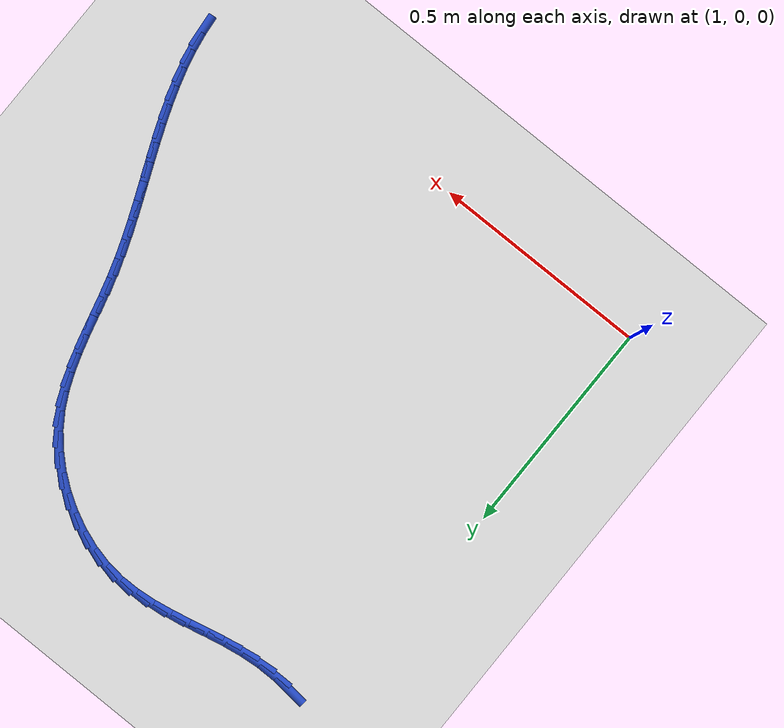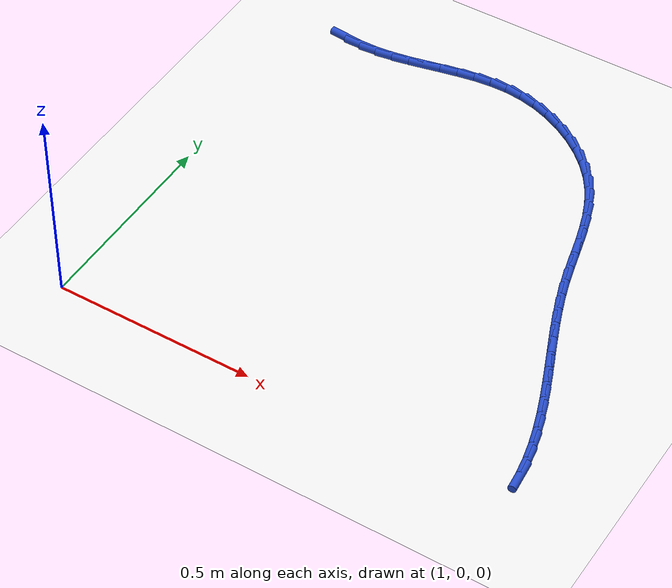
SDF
<sdf version="1.6">
 <world name="default">
  <model name="ground_plane">
   <static>1</static>
   <link name="link">
    <collision name="collision">
     <geometry><plane><normal>0 0 1</normal><size>100 100</size></plane></geometry>
     <surface><friction><ode><mu>100</mu><mu2>50</mu2></ode></friction></surface>
    </collision>
    <visual name="visual">
     <cast_shadows>0</cast_shadows>
     <geometry><plane><normal>0 0 1</normal><size>100 100</size></plane></geometry>
     <material>
      <script><uri>file://media/materials/scripts/gazebo.material</uri><name>Gazebo/WhiteGlow</name></script>
     </material>
    </visual>
   </link>
  </model>
  <model name="line">
   <link name="link_41">
    <pose>1.0915150116153252 1.0483513996887188 0.01 0 1.57 -0.09841034492489349</pose>
    <collision name="collision">
     <geometry><cylinder><radius>0.01</radius><length>0.08</length></cylinder></geometry>
    </collision>
    <visual name="visual">
     <material>
      <script><name>Gazebo/Blue</name><uri>file://media/materials/scripts/gazebo.material</uri></script>
     </material>
     <geometry><cylinder><radius>0.01</radius><length>0.08</length></cylinder></geometry>
    </visual>
   </link>
   <link name="link_42">
    <pose>1.1355952701458727 1.0439993880049823 0.01 0 1.57 0.0017227604798749235</pose>
    <collision name="collision">
     <geometry><cylinder><radius>0.01</radius><length>0.08</length></cylinder></geometry>
    </collision>
    <visual name="visual">
     <material>
      <script><name>Gazebo/Blue</name><uri>file://media/materials/scripts/gazebo.material</uri></script>
     </material>
     <geometry><cylinder><radius>0.01</radius><length>0.08</length></cylinder></geometry>
    </visual>
   </link>
   <link name="link_43">
    <pose>1.1794063598697995 1.0440748640936075 0.01 0 1.57 0.09612849576866987</pose>
    <collision name="collision">
     <geometry><cylinder><radius>0.01</radius><length>0.08</length></cylinder></geometry>
    </collision>
    <visual name="visual">
     <material>
      <script><name>Gazebo/Blue</name><uri>file://media/materials/scripts/gazebo.material</uri></script>
     </material>
     <geometry><cylinder><radius>0.01</radius><length>0.08</length></cylinder></geometry>
    </visual>
   </link>
   <link name="link_44">
    <pose>1.222932481623738 1.0482719005098726 0.01 0 1.57 0.1638558537596527</pose>
    <collision name="collision">
     <geometry><cylinder><radius>0.01</radius><length>0.08</length></cylinder></geometry>
    </collision>
    <visual name="visual">
     <material>
      <script><name>Gazebo/Blue</name><uri>file://media/materials/scripts/gazebo.material</uri></script>
     </material>
     <geometry><cylinder><radius>0.01</radius><length>0.08</length></cylinder></geometry>
    </visual>
   </link>
   <link name="link_45">
    <pose>1.2662318097434833 1.0554309342074606 0.01 0 1.57 0.2044519289267373</pose>
    <collision name="collision">
     <geometry><cylinder><radius>0.01</radius><length>0.08</length></cylinder></geometry>
    </collision>
    <visual name="visual">
     <material>
      <script><name>Gazebo/Blue</name><uri>file://media/materials/scripts/gazebo.material</uri></script>
     </material>
     <geometry><cylinder><radius>0.01</radius><length>0.08</length></cylinder></geometry>
    </visual>
   </link>
   <link name="link_46">
    <pose>1.309364080952772 1.0643743725756276 0.01 0 1.57 0.21842862549788306</pose>
    <collision name="collision">
     <geometry><cylinder><radius>0.01</radius><length>0.08</length></cylinder></geometry>
    </collision>
    <visual name="visual">
     <material>
      <script><name>Gazebo/Blue</name><uri>file://media/materials/scripts/gazebo.material</uri></script>
     </material>
     <geometry><cylinder><radius>0.01</radius><length>0.08</length></cylinder></geometry>
    </visual>
   </link>
   <link name="link_47">
    <pose>1.35238903197534 1.07392462300363 0.01 0 1.57 0.20597181579771012</pose>
    <collision name="collision">
     <geometry><cylinder><radius>0.01</radius><length>0.08</length></cylinder></geometry>
    </collision>
    <visual name="visual">
     <material>
      <script><name>Gazebo/Blue</name><uri>file://media/materials/scripts/gazebo.material</uri></script>
     </material>
     <geometry><cylinder><radius>0.01</radius><length>0.08</length></cylinder></geometry>
    </visual>
   </link>
   <link name="link_48">
    <pose>1.395366399534923 1.082904092880724 0.01 0 1.57 0.1666460633875939</pose>
    <collision name="collision">
     <geometry><cylinder><radius>0.01</radius><length>0.08</length></cylinder></geometry>
    </collision>
    <visual name="visual">
     <material>
      <script><name>Gazebo/Blue</name><uri>file://media/materials/scripts/gazebo.material</uri></script>
     </material>
     <geometry><cylinder><radius>0.01</radius><length>0.08</length></cylinder></geometry>
    </visual>
   </link>
   <link name="link_49">
    <pose>1.4383559203552574 1.0901351895961655 0.01 0 1.57 0.09964542662883993</pose>
    <collision name="collision">
     <geometry><cylinder><radius>0.01</radius><length>0.08</length></cylinder></geometry>
    </collision>
    <visual name="visual">
     <material>
      <script><name>Gazebo/Blue</name><uri>file://media/materials/scripts/gazebo.material</uri></script>
     </material>
     <geometry><cylinder><radius>0.01</radius><length>0.08</length></cylinder></geometry>
    </visual>
   </link>
   <link name="link_50">
    <pose>1.4814173311600782 1.0944403205392108 0.01 0 1.57 0.00466674974000229</pose>
    <collision name="collision">
     <geometry><cylinder><radius>0.01</radius><length>0.08</length></cylinder></geometry>
    </collision>
    <visual name="visual">
     <material>
      <script><name>Gazebo/Blue</name><uri>file://media/materials/scripts/gazebo.material</uri></script>
     </material>
     <geometry><cylinder><radius>0.01</radius><length>0.08</length></cylinder></geometry>
    </visual>
   </link>
   <link name="link_51">
    <pose>1.5246103686731232 1.0946418930991164 0.01 0 1.57 -0.11486640685059647</pose>
    <collision name="collision">
     <geometry><cylinder><radius>0.01</radius><length>0.08</length></cylinder></geometry>
    </collision>
    <visual name="visual">
     <material>
      <script><name>Gazebo/Blue</name><uri>file://media/materials/scripts/gazebo.material</uri></script>
     </material>
     <geometry><cylinder><radius>0.01</radius><length>0.08</length></cylinder></geometry>
    </visual>
   </link>
   <link name="link_52">
    <pose>1.5679611291450228 1.089640330276668 0.01 0 1.57 -0.23629674056166078</pose>
    <collision name="collision">
     <geometry><cylinder><radius>0.01</radius><length>0.08</length></cylinder></geometry>
    </collision>
    <visual name="visual">
     <material>
      <script><name>Gazebo/Blue</name><uri>file://media/materials/scripts/gazebo.material</uri></script>
     </material>
     <geometry><cylinder><radius>0.01</radius><length>0.08</length></cylinder></geometry>
    </visual>
   </link>
   <link name="link_53">
    <pose>1.6111005034226307 1.0792525758112463 0.01 0 1.57 -0.34832398092088296</pose>
    <collision name="collision">
     <geometry><cylinder><radius>0.01</radius><length>0.08</length></cylinder></geometry>
    </collision>
    <visual name="visual">
     <material>
      <script><name>Gazebo/Blue</name><uri>file://media/materials/scripts/gazebo.material</uri></script>
     </material>
     <geometry><cylinder><radius>0.01</radius><length>0.08</length></cylinder></geometry>
    </visual>
   </link>
   <link name="link_54">
    <pose>1.6534024338790512 1.0638914625740308 0.01 0 1.57 -0.4536945858135071</pose>
    <collision name="collision">
     <geometry><cylinder><radius>0.01</radius><length>0.08</length></cylinder></geometry>
    </collision>
    <visual name="visual">
     <material>
      <script><name>Gazebo/Blue</name><uri>file://media/materials/scripts/gazebo.material</uri></script>
     </material>
     <geometry><cylinder><radius>0.01</radius><length>0.08</length></cylinder></geometry>
    </visual>
   </link>
   <link name="link_55">
    <pose>1.6942364906973213 1.0439799629809332 0.01 0 1.57 -0.5554197858310866</pose>
    <collision name="collision">
     <geometry><cylinder><radius>0.01</radius><length>0.08</length></cylinder></geometry>
    </collision>
    <visual name="visual">
     <material>
      <script><name>Gazebo/Blue</name><uri>file://media/materials/scripts/gazebo.material</uri></script>
     </material>
     <geometry><cylinder><radius>0.01</radius><length>0.08</length></cylinder></geometry>
    </visual>
   </link>
   <link name="link_56">
    <pose>1.7329722440604782 1.0199410494478662 0.01 0 1.57 -0.6564915953322109</pose>
    <collision name="collision">
     <geometry><cylinder><radius>0.01</radius><length>0.08</length></cylinder></geometry>
    </collision>
    <visual name="visual">
     <material>
      <script><name>Gazebo/Blue</name><uri>file://media/materials/scripts/gazebo.material</uri></script>
     </material>
     <geometry><cylinder><radius>0.01</radius><length>0.08</length></cylinder></geometry>
    </visual>
   </link>
   <link name="link_57">
    <pose>1.768979264151558 0.9921976943907425 0.01 0 1.57 -0.7599134277073301</pose>
    <collision name="collision">
     <geometry><cylinder><radius>0.01</radius><length>0.08</length></cylinder></geometry>
    </collision>
    <visual name="visual">
     <material>
      <script><name>Gazebo/Blue</name><uri>file://media/materials/scripts/gazebo.material</uri></script>
     </material>
     <geometry><cylinder><radius>0.01</radius><length>0.08</length></cylinder></geometry>
    </visual>
   </link>
   <link name="link_58">
    <pose>1.8016271211535981 0.9611728702254744 0.01 0 1.57 -0.8687499168064824</pose>
    <collision name="collision">
     <geometry><cylinder><radius>0.01</radius><length>0.08</length></cylinder></geometry>
    </collision>
    <visual name="visual">
     <material>
      <script><name>Gazebo/Blue</name><uri>file://media/materials/scripts/gazebo.material</uri></script>
     </material>
     <geometry><cylinder><radius>0.01</radius><length>0.08</length></cylinder></geometry>
    </visual>
   </link>
   <link name="link_59">
    <pose>1.8302853852496346 0.9272895493679748 0.01 0 1.57 -0.9851431907706957</pose>
    <collision name="collision">
     <geometry><cylinder><radius>0.01</radius><length>0.08</length></cylinder></geometry>
    </collision>
    <visual name="visual">
     <material>
      <script><name>Gazebo/Blue</name><uri>file://media/materials/scripts/gazebo.material</uri></script>
     </material>
     <geometry><cylinder><radius>0.01</radius><length>0.08</length></cylinder></geometry>
    </visual>
   </link>
   <link name="link_60">
    <pose>1.854376003531106 0.8909690206267675 0.01 0 1.57 -1.0954290217343032</pose>
    <collision name="collision">
     <geometry><cylinder><radius>0.01</radius><length>0.08</length></cylinder></geometry>
    </collision>
    <visual name="visual">
     <material>
      <script><name>Gazebo/Blue</name><uri>file://media/materials/scripts/gazebo.material</uri></script>
     </material>
     <geometry><cylinder><radius>0.01</radius><length>0.08</length></cylinder></geometry>
    </visual>
   </link>
   <link name="link_61">
    <pose>1.8741224399110057 0.8526068087917604 0.01 0 1.57 -1.1851198841722708</pose>
    <collision name="collision">
     <geometry><cylinder><radius>0.01</radius><length>0.08</length></cylinder></geometry>
    </collision>
    <visual name="visual">
     <material>
      <script><name>Gazebo/Blue</name><uri>file://media/materials/scripts/gazebo.material</uri></script>
     </material>
     <geometry><cylinder><radius>0.01</radius><length>0.08</length></cylinder></geometry>
    </visual>
   </link>
   <link name="link_62">
    <pose>1.8903744015652888 0.8125783086410515 0.01 0 1.57 -1.2523048082926052</pose>
    <collision name="collision">
     <geometry><cylinder><radius>0.01</radius><length>0.08</length></cylinder></geometry>
    </collision>
    <visual name="visual">
     <material>
      <script><name>Gazebo/Blue</name><uri>file://media/materials/scripts/gazebo.material</uri></script>
     </material>
     <geometry><cylinder><radius>0.01</radius><length>0.08</length></cylinder></geometry>
    </visual>
   </link>
   <link name="link_63">
    <pose>1.903998247350815 0.7712583796998204 0.01 0 1.57 -1.2970002897504356</pose>
    <collision name="collision">
     <geometry><cylinder><radius>0.01</radius><length>0.08</length></cylinder></geometry>
    </collision>
    <visual name="visual">
     <material>
      <script><name>Gazebo/Blue</name><uri>file://media/materials/scripts/gazebo.material</uri></script>
     </material>
     <geometry><cylinder><radius>0.01</radius><length>0.08</length></cylinder></geometry>
    </visual>
   </link>
   <link name="link_64">
    <pose>1.9158603361244457 0.7290218814932485 0.01 0 1.57 -1.3198392782651724</pose>
    <collision name="collision">
     <geometry><cylinder><radius>0.01</radius><length>0.08</length></cylinder></geometry>
    </collision>
    <visual name="visual">
     <material>
      <script><name>Gazebo/Blue</name><uri>file://media/materials/scripts/gazebo.material</uri></script>
     </material>
     <geometry><cylinder><radius>0.01</radius><length>0.08</length></cylinder></geometry>
    </visual>
   </link>
   <link name="link_65">
    <pose>1.9268270267430412 0.6862436735465157 0.01 0 1.57 -1.3214089988809954</pose>
    <collision name="collision">
     <geometry><cylinder><radius>0.01</radius><length>0.08</length></cylinder></geometry>
    </collision>
    <visual name="visual">
     <material>
      <script><name>Gazebo/Blue</name><uri>file://media/materials/scripts/gazebo.material</uri></script>
     </material>
     <geometry><cylinder><radius>0.01</radius><length>0.08</length></cylinder></geometry>
    </visual>
   </link>
   <link name="link_66">
    <pose>1.937764678063463 0.6432986153848024 0.01 0 1.57 -1.3019454532937274</pose>
    <collision name="collision">
     <geometry><cylinder><radius>0.01</radius><length>0.08</length></cylinder></geometry>
    </collision>
    <visual name="visual">
     <material>
      <script><name>Gazebo/Blue</name><uri>file://media/materials/scripts/gazebo.material</uri></script>
     </material>
     <geometry><cylinder><radius>0.01</radius><length>0.08</length></cylinder></geometry>
    </visual>
   </link>
   <link name="link_67">
    <pose>1.9495396489425691 0.6005615665332887 0.01 0 1.57 -1.2646261209700143</pose>
    <collision name="collision">
     <geometry><cylinder><radius>0.01</radius><length>0.08</length></cylinder></geometry>
    </collision>
    <visual name="visual">
     <material>
      <script><name>Gazebo/Blue</name><uri>file://media/materials/scripts/gazebo.material</uri></script>
     </material>
     <geometry><cylinder><radius>0.01</radius><length>0.08</length></cylinder></geometry>
    </visual>
   </link>
   <link name="link_68">
    <pose>1.96288165435249 0.5583547080388547 0.01 0 1.57 -1.2287344443478352</pose>
    <collision name="collision">
     <geometry><cylinder><radius>0.01</radius><length>0.08</length></cylinder></geometry>
    </collision>
    <visual name="visual">
     <material>
      <script><name>Gazebo/Blue</name><uri>file://media/materials/scripts/gazebo.material</uri></script>
     </material>
     <geometry><cylinder><radius>0.01</radius><length>0.08</length></cylinder></geometry>
    </visual>
   </link>
   <link name="link_69">
    <pose>1.9777166047164874 0.5166903409960618 0.01 0 1.57 -1.2013833679019603</pose>
    <collision name="collision">
     <geometry><cylinder><radius>0.01</radius><length>0.08</length></cylinder></geometry>
    </collision>
    <visual name="visual">
     <material>
      <script><name>Gazebo/Blue</name><uri>file://media/materials/scripts/gazebo.material</uri></script>
     </material>
     <geometry><cylinder><radius>0.01</radius><length>0.08</length></cylinder></geometry>
    </visual>
   </link>
   <link name="link_70">
    <pose>1.9936774643392785 0.4754678309240564 0.01 0 1.57 -1.1825807462609383</pose>
    <collision name="collision">
     <geometry><cylinder><radius>0.01</radius><length>0.08</length></cylinder></geometry>
    </collision>
    <visual name="visual">
     <material>
      <script><name>Gazebo/Blue</name><uri>file://media/materials/scripts/gazebo.material</uri></script>
     </material>
     <geometry><cylinder><radius>0.01</radius><length>0.08</length></cylinder></geometry>
    </visual>
   </link>
   <link name="link_71">
    <pose>2.010396772606886 0.43458637952879803 0.01 0 1.57 -1.1723111704641578</pose>
    <collision name="collision">
     <geometry><cylinder><radius>0.01</radius><length>0.08</length></cylinder></geometry>
    </collision>
    <visual name="visual">
     <material>
      <script><name>Gazebo/Blue</name><uri>file://media/materials/scripts/gazebo.material</uri></script>
     </material>
     <geometry><cylinder><radius>0.01</radius><length>0.08</length></cylinder></geometry>
    </visual>
   </link>
   <link name="link_72">
    <pose>2.0275070689053316 0.39394518851624705 0.01 0 1.57 -1.1705875674830826</pose>
    <collision name="collision">
     <geometry><cylinder><radius>0.01</radius><length>0.08</length></cylinder></geometry>
    </collision>
    <visual name="visual">
     <material>
      <script><name>Gazebo/Blue</name><uri>file://media/materials/scripts/gazebo.material</uri></script>
     </material>
     <geometry><cylinder><radius>0.01</radius><length>0.08</length></cylinder></geometry>
    </visual>
   </link>
   <link name="link_73">
    <pose>2.0446408926206385 0.35344345959236273 0.01 0 1.57 -1.1774742670913005</pose>
    <collision name="collision">
     <geometry><cylinder><radius>0.01</radius><length>0.08</length></cylinder></geometry>
    </collision>
    <visual name="visual">
     <material>
      <script><name>Gazebo/Blue</name><uri>file://media/materials/scripts/gazebo.material</uri></script>
     </material>
     <geometry><cylinder><radius>0.01</radius><length>0.08</length></cylinder></geometry>
    </visual>
   </link>
   <link name="link_74">
    <pose>2.0614307831388285 0.3129803944631055 0.01 0 1.57 -1.1930921714082812</pose>
    <collision name="collision">
     <geometry><cylinder><radius>0.01</radius><length>0.08</length></cylinder></geometry>
    </collision>
    <visual name="visual">
     <material>
      <script><name>Gazebo/Blue</name><uri>file://media/materials/scripts/gazebo.material</uri></script>
     </material>
     <geometry><cylinder><radius>0.01</radius><length>0.08</length></cylinder></geometry>
    </visual>
   </link>
   <link name="link_75">
    <pose>2.0775092798459243 0.2724551948344349 0.01 0 1.57 -1.2176051850448366</pose>
    <collision name="collision">
     <geometry><cylinder><radius>0.01</radius><length>0.08</length></cylinder></geometry>
    </collision>
    <visual name="visual">
     <material>
      <script><name>Gazebo/Blue</name><uri>file://media/materials/scripts/gazebo.material</uri></script>
     </material>
     <geometry><cylinder><radius>0.01</radius><length>0.08</length></cylinder></geometry>
    </visual>
   </link>
   <link name="link_76">
    <pose>2.0925089221279483 0.23176706241231035 0.01 0 1.57 -1.2511855249891992</pose>
    <collision name="collision">
     <geometry><cylinder><radius>0.01</radius><length>0.08</length></cylinder></geometry>
    </collision>
    <visual name="visual">
     <material>
      <script><name>Gazebo/Blue</name><uri>file://media/materials/scripts/gazebo.material</uri></script>
     </material>
     <geometry><cylinder><radius>0.01</radius><length>0.08</length></cylinder></geometry>
    </visual>
   </link>
   <link name="link_77">
    <pose>2.1060622493709227 0.19081519890269247 0.01 0 1.57 -1.2939547211688303</pose>
    <collision name="collision">
     <geometry><cylinder><radius>0.01</radius><length>0.08</length></cylinder></geometry>
    </collision>
    <visual name="visual">
     <material>
      <script><name>Gazebo/Blue</name><uri>file://media/materials/scripts/gazebo.material</uri></script>
     </material>
     <geometry><cylinder><radius>0.01</radius><length>0.08</length></cylinder></geometry>
    </visual>
   </link>
   <link name="link_78">
    <pose>2.1178018009608706 0.14949880601154034 0.01 0 1.57 -1.3458984760475654</pose>
    <collision name="collision">
     <geometry><cylinder><radius>0.01</radius><length>0.08</length></cylinder></geometry>
    </collision>
    <visual name="visual">
     <material>
      <script><name>Gazebo/Blue</name><uri>file://media/materials/scripts/gazebo.material</uri></script>
     </material>
     <geometry><cylinder><radius>0.01</radius><length>0.08</length></cylinder></geometry>
    </visual>
   </link>
   <link name="link_79">
    <pose>2.127360116283814 0.10771708544481451 0.01 0 1.57 -1.406756580920014</pose>
    <collision name="collision">
     <geometry><cylinder><radius>0.01</radius><length>0.08</length></cylinder></geometry>
    </collision>
    <visual name="visual">
     <material>
      <script><name>Gazebo/Blue</name><uri>file://media/materials/scripts/gazebo.material</uri></script>
     </material>
     <geometry><cylinder><radius>0.01</radius><length>0.08</length></cylinder></geometry>
    </visual>
   </link>
   <link name="link_80">
    <pose>2.1343698266237463 0.0653692851292034 0.01 0 1.57 -1.473188336971283</pose>
    <collision name="collision">
     <geometry><cylinder><radius>0.01</radius><length>0.08</length></cylinder></geometry>
    </collision>
    <visual name="visual">
     <material>
      <script><name>Gazebo/Blue</name><uri>file://media/materials/scripts/gazebo.material</uri></script>
     </material>
     <geometry><cylinder><radius>0.01</radius><length>0.08</length></cylinder></geometry>
    </visual>
   </link>
  </model>
 </world>
</sdf>
